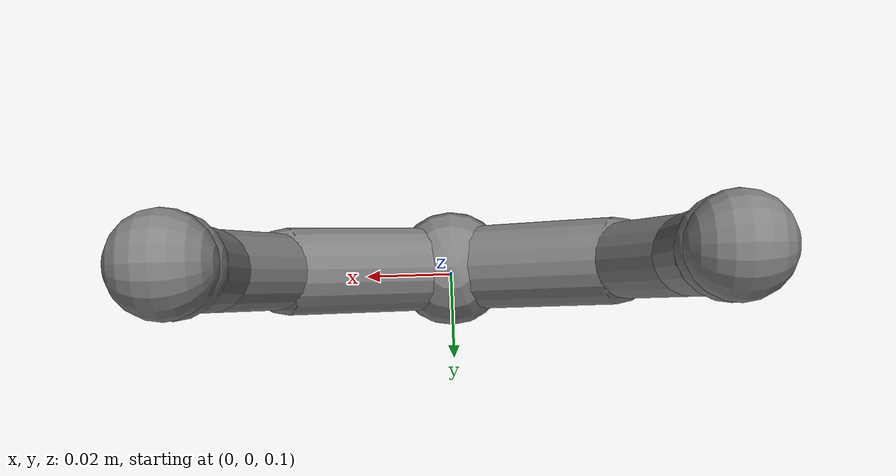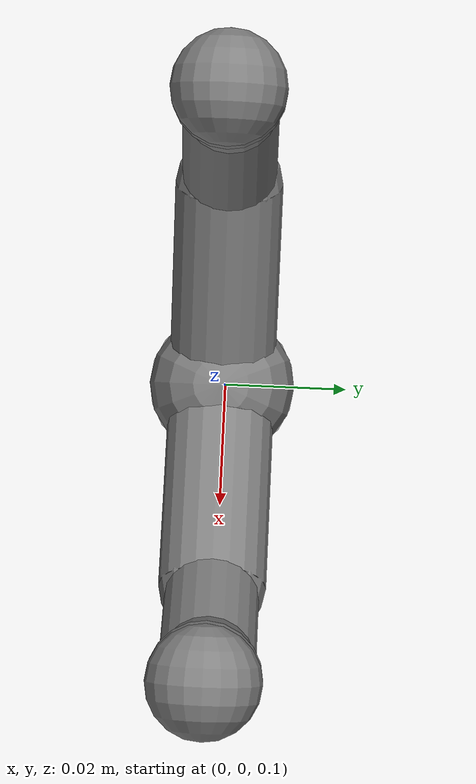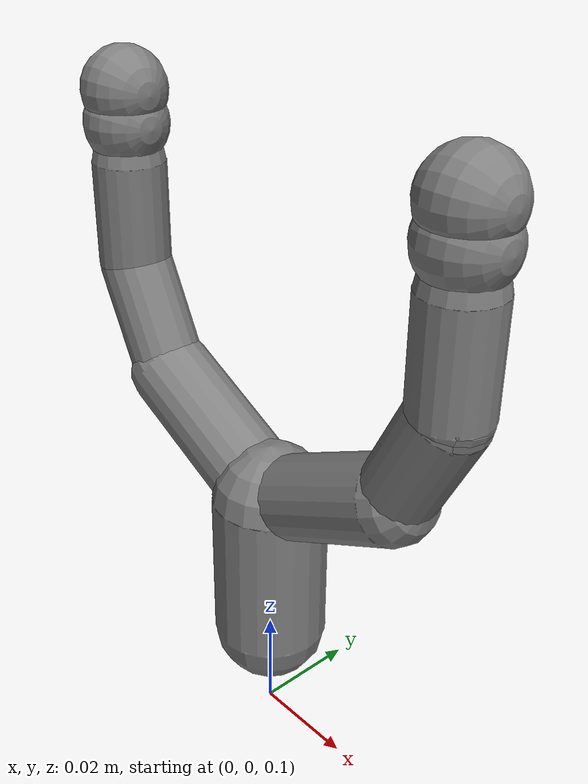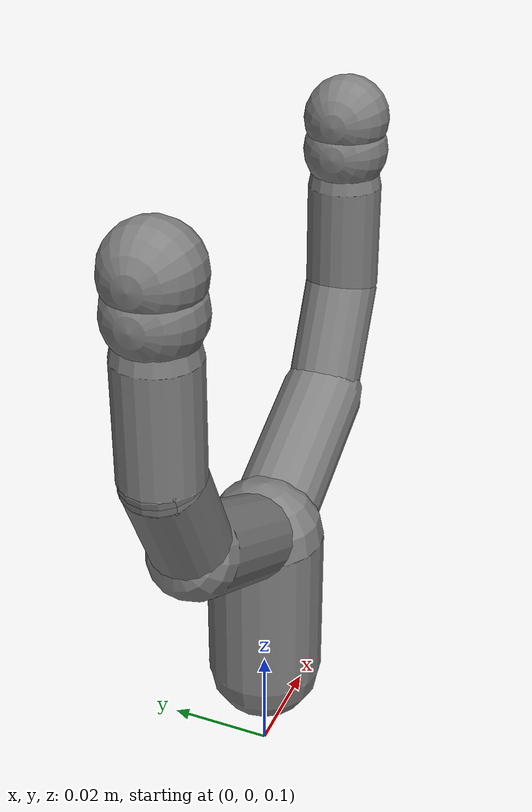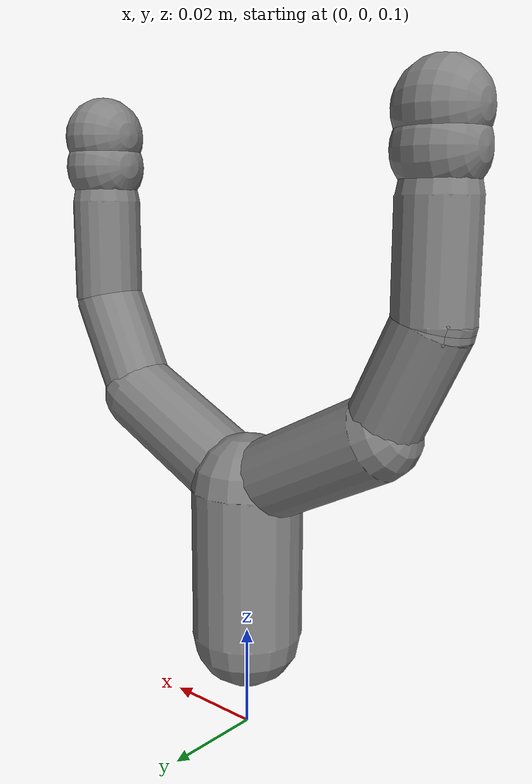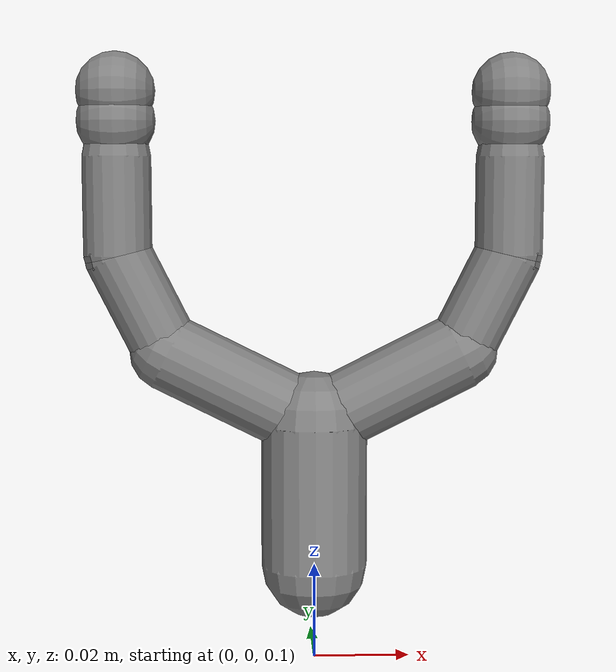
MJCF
<mujoco model="planar manipulator">

  <visual>
    <map shadowclip=".5"/>
    <quality shadowsize="2048"/>
  </visual>>

  <option timestep="0.001" cone="elliptic"/>

  <default>
    <geom friction=".7" solimp="0.9 0.97 0.001" solref=".005 1"/>
    <joint solimplimit="0 0.99 0.01" solreflimit=".005 1"/>
    <general ctrllimited="true"/>
    <tendon width="0.01"/>
    <site size=".003 .003 .003"  group="3"/>

    <default class="arm">
      <geom type="capsule"  density="500"/>
      <joint type="hinge" pos="0 0 0" axis="0 -1 0" limited="true"/>
      <default class="hand">
        <joint damping=".5" range="-10 60"/>
        <geom size=".008"/>
        <site  type="box" size=".018 .005 .005" pos=".022 0 -.002" euler="0 15 0" group="4"/>
        <default class="fingertip">
          <geom type="sphere" size=".008"  />
          <joint damping=".01" stiffness=".01" range="-40 20"/>
          <site  size=".012 .005 .008" pos=".003 0 .003" group="4" euler="0 0 0"/>
        </default>
      </default>
    </default>

    <default class="object">
    </default>

    <default class="task">
      <site rgba="0 0 0 0"/>
    </default>

    <default class="obstacle">
      <geom  friction="0"/>
    </default>

    <default class="ghost">
      <geom   contype="0" conaffinity="0"/>
    </default>
  </default>

  <worldbody>

    <!-- Arm -->
          <body  name="hand" pos="0 0 .12" childclass="arm">
            <joint name="arm_wrist" damping="0.5" range="-140 140" />
            <geom  name="hand" size=".011" fromto="0 0 0 0 0 .03"/>
            <geom  name="palm1"  fromto="0 0 .03  .03 0 .045" class="hand"/>
            <geom  name="palm2"  fromto="0 0 .03 -.03 0 .045" class="hand"/>
            <site  name="grasp" pos="0 0 .065"/>
            <body  name="pinch site" pos="0 0 .090">
              <site  name="pinch"/>
              <inertial pos="0 0 0" mass="1e-6" diaginertia="1e-12 1e-12 1e-12"/>
              <camera name="hand" pos="0 -.3 0" xyaxes="1 0 0 0 0 1" mode="track"/>
            </body>
            <site  name="palm_touch" type="box" group="4" size=".025 .005 .008" pos="0 0 .043"/>

            <body name="thumb" pos=".03 0 .045" euler="0 -90 0" childclass="hand">
              <joint name="thumb"/>
              <geom  name="thumb1"  fromto="0 0 0 .02 0.0 -.01" size=".007"/>
              <geom  name="thumb2"  fromto=".02 0.0 -.01 .04 0.0 -.01" size=".007"/>
              <site  name="thumb_touch" group="4"/>
              <body  name="thumbtip" pos=".05 0.0 -.01" childclass="fingertip">
                <joint name="thumbtip"/>
                <geom  name="thumbtip1" pos="-.003 0 0" />
                <geom  name="thumbtip2" pos=".003 0 0" />
                <site  name="thumbtip_touch" group="4"/>
              </body>
            </body>

            <body name="finger" pos="-.03 0 .045" euler="0 90 180" childclass="hand">
              <joint name="finger"/>
              <geom  name="finger1"  fromto="0 0 0 .02 0 -.01" size=".007" />
              <geom  name="finger2"  fromto=".02 0 -.01 .04 0 -.01" size=".007"/>
              <site  name="finger_touch"/>
              <body  name="fingertip" pos=".05 0 -.01" childclass="fingertip">
                <joint name="fingertip"/>
                <geom  name="fingertip1" pos="-.003 0 0" />
                <geom  name="fingertip2" pos=".003 0 0" />
                <site  name="fingertip_touch"/>
              </body>
            </body>
    </body>

  </worldbody>

  <tendon>
    <fixed name="grasp">
      <joint joint="thumb"  coef=".5"/>
      <joint joint="finger" coef=".5"/>
    </fixed>
    <fixed name="coupling">
      <joint joint="thumb"  coef="-.5"/>
      <joint joint="finger" coef=".5"/>
    </fixed>
  </tendon>

  <equality>
    <tendon name="coupling" tendon1="coupling" solimp="0.95 0.99 0.001" solref=".005 .5"/>
  </equality>

  <sensor>
    <touch name="palm_touch" site="palm_touch"/>
    <touch name="finger_touch" site="finger_touch"/>
    <touch name="thumb_touch" site="thumb_touch"/>
    <touch name="fingertip_touch" site="fingertip_touch"/>
    <touch name="thumbtip_touch" site="thumbtip_touch"/>
  </sensor>

  <actuator>
    <motor name="wrist"    joint="arm_wrist" ctrlrange="-1 1"  gear="2"/>
    <motor name="grasp"    tendon="grasp"       ctrlrange="-1 1"  gear="2"/>
  </actuator>

</mujoco>
